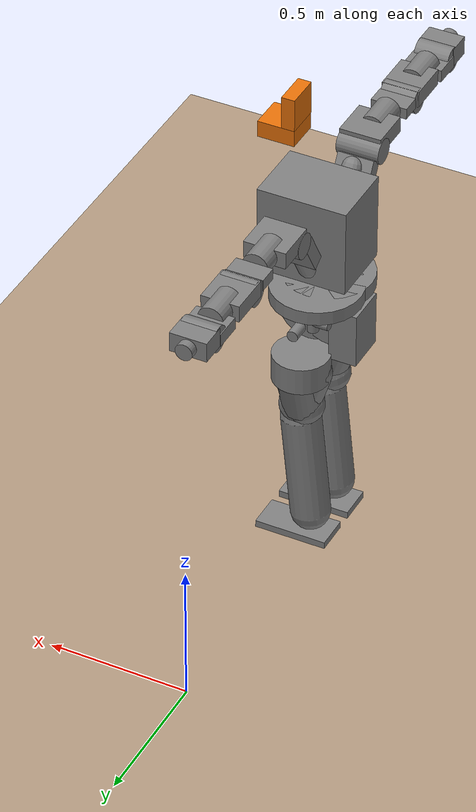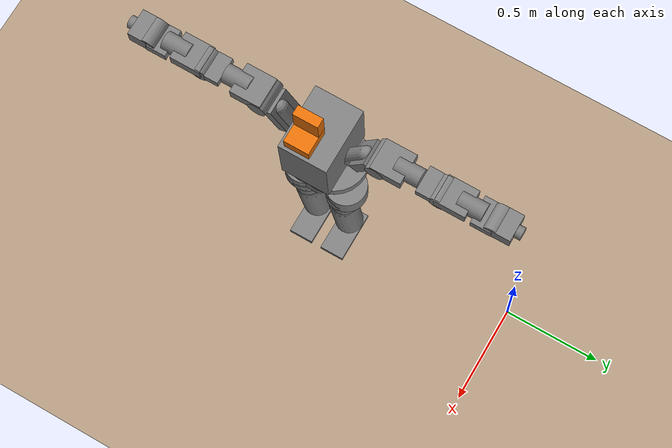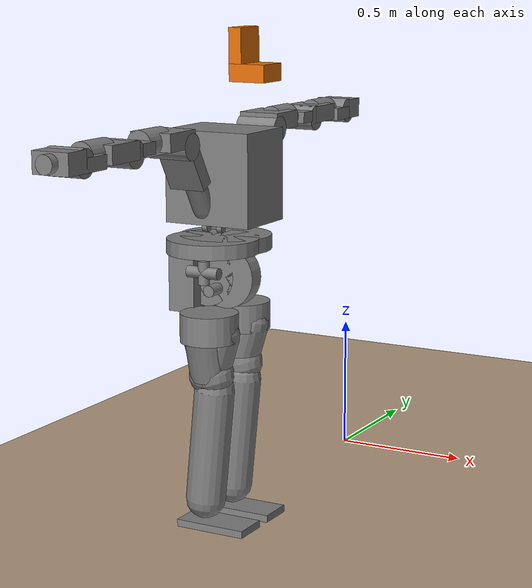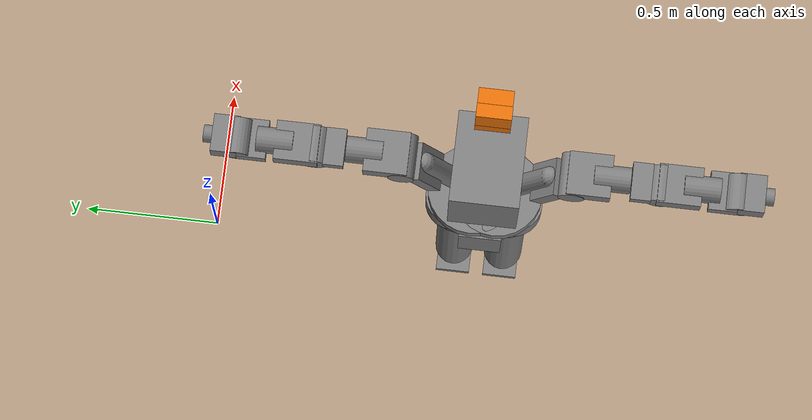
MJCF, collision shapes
<mujoco model="Atlas (v1.31)">
	<compiler coordinate="local" angle="radian" meshdir="../meshes/atlas/"/>
	<size njmax ="1000"/>
	<default>
		<default class="viz">
            <geom contype="0" conaffinity="0" group="1" type="mesh"/>
        </default>
		<default class="cls">
            <geom group="2"/>
        </default>
		<site type="sphere" size="0.005" group="3"/>
		<joint limited="true" damping="3"/>
		<default class="FTsensor">
            <site type="cylinder" size="0.005 0.005" group="4" rgba=".1 .1 .9 1"/>
        </default>
	</default>

	<asset>
		<mesh name="pelvis"         file="pelvis.stl"/>
		<mesh name="ltorso"         file="ltorso.stl"/>
		<mesh name="mtorso"         file="mtorso.stl"/>
		<mesh name="utorso"         file="utorso.stl"/>
		<mesh name="l_clav"         file="l_clav.stl"/>
		<mesh name="l_scap"         file="l_scap.stl"/>
		<mesh name="l_uarm"         file="l_uarm.stl"/>
		<mesh name="l_larm"         file="l_larm.stl"/>
		<mesh name="l_farm"         file="l_farm.stl"/>
		<mesh name="l_hand"			file="l_hand.stl"/>
		<mesh name="head"           file="head.stl"/>
		<mesh name="head_camera"    file="head_camera.stl"/>
		<mesh name="r_clav"         file="r_clav.stl"/>
		<mesh name="r_scap"         file="r_scap.stl"/>
		<mesh name="r_uarm"         file="r_uarm.stl"/>
		<mesh name="r_larm"         file="r_larm.stl"/>
		<mesh name="r_farm"         file="r_farm.stl"/>
		<mesh name="r_hand"         file="r_hand.stl"/>
		<mesh name="l_uglut"        file="l_uglut.stl"/>
		<mesh name="l_lglut"        file="l_lglut.stl"/>
		<mesh name="l_uleg"         file="l_uleg.stl"/>
		<mesh name="l_lleg"         file="l_lleg.stl"/>
		<mesh name="l_talus"        file="l_talus.stl"/>
		<mesh name="l_foot"         file="l_foot.stl"/>
		<mesh name="r_uglut"        file="r_uglut.stl"/>
		<mesh name="r_lglut"        file="r_lglut.stl"/>
		<mesh name="r_uleg"         file="r_uleg.stl"/>
		<mesh name="r_lleg"         file="r_lleg.stl"/>
		<mesh name="r_talus"        file="r_talus.stl"/>
		<mesh name="r_foot"         file="r_foot.stl"/>

		<texture name="groundplane" type="2d" builtin="checker" rgb1=".25 .26 .25"
			rgb2=".22 .22 .22" width="100" height="100" mark="none" markrgb=".8 .8 .8"/>

        <material name='MatPlane2' reflectance='0.3' />
		<texture type="skybox" builtin="gradient" width="128" height="128" rgb1="0.4 0.6 0.8" rgb2="0 0 0"/>
        <texture name="texgeom" type="cube" builtin="flat" mark="cross" width="128" height="128" rgb1="0.6 0.6 0.6" rgb2="0.6 0.6 0.6" markrgb="1 1 1"/>
        <texture name="texplane" type="2d" builtin="checker" rgb1=".4 .4 .4" rgb2=".6 .6 .6" width="512" height="512"/>
        <material name='geom' texture="texgeom" texuniform="true"/>
    <material name="MatPlane3" reflectance="0.5" shininess="1" specular="1" texrepeat="60 60" texture="texplane"/>
	</asset>
	<option timestep='0.0005' iterations="50" tolerance="1e-10" solver="Newton" jacobian="dense" cone="elliptic" gravity="0 0 -9.81"/>
	<visual>
        <map fogstart="2" fogend="4"/>
    </visual>

	<worldbody>
        <light directional="true" diffuse=".8 .8 .8" pos="0 0 10" dir="0 0 -10"/>
        <light directional="true" diffuse=".5 .5 .5" pos="10 0 0" dir="-10 0 0"/>
		<!-- GROUND -->
		<geom name="ground" type="plane" pos="0 0 0" size="30 30 .05" rgba="0.7 0.6 0.5 1" material="MatPlane3" group="3"/>

		<body name="pelvis" pos="0 -1 0.9">
			<site name="butt" pos="-.15 0 -.15"/>
			<joint type="free" limited="false" name="root" damping="0" stiffness="0" armature="0"/>
			<inertial pos="0.0111 0 0.0271" quat="0.483552 0.511912 -0.490148 0.513691" mass="12.54638" diaginertia="0.056060 0.056060 0.056060" />
			<geom class="viz" mesh="pelvis" />
			<geom type="cylinder" pos="0.046 0 -0.02" quat="0.707107 0.707107 0 0" size="0.11 0.03" class="cls"/>
			<geom type="cylinder" pos="-0.03 0 -0.02" quat="0.707107 0.707107 0 0" size="0.11 0.03" class="cls"/>
			<geom type="cylinder" pos="0.01 0.042 0.09" size="0.16 0.025" class="cls"/>
			<geom type="cylinder" pos="0.01 -0.042 0.09" size="0.16 0.025" class="cls"/>
			<geom type="box" pos="-0.1 0 -0.05" size="0.05 0.075 0.1" class="cls"/>
			<body name="ltorso" pos="-0.0125 0 0" >
				<inertial pos="-0.011298 -0.000003 0.074684" quat="0.498101 0.498096 -0.501893 0.501896" mass="1.62729" diaginertia="0.109733 0.064662 0.050298" />
				<joint name="back_lbz" type="hinge" pos="0 0 0" axis="0 0 1" range="-0.610865 0.610865" damping="35" stiffness="0"/>
				<geom class="viz" mesh="ltorso" />
				<body name="mtorso" pos="0 0 0.09" >
					<inertial pos="-0.008163 -0.013125 0.030597" quat="0.707045 -0.000116 -0.000202 0.707169" mass="3.8068" diaginertia="0.283991 0.283991 0.283991" />
					<joint name="back_mby" type="hinge" pos="0 0 0" axis="0 1 0" range="-1.2 1.28" damping="35" stiffness="0"/>
					<geom class="viz" mesh="mtorso" />
					<geom type="cylinder" pos="0 0 0" quat="0.707107 0.707107 0 0" size="0.017 0.015" class="cls"/>
					<geom type="cylinder" pos="0.0285 0 0.05" quat="0.707107 0 0.707107 0" size="0.015 0.01" class="cls"/>
					<geom type="cylinder" pos="-0.0285 0 0.05" quat="0.707107 0 0.707107 0" size="0.015 0.01" class="cls"/>
					<body name="utorso" pos="0 0 0.05"   user="-6006">
						<inertial pos="0.02 -0.001 0.211" quat="0.699117 -0.095385 -0.090376 0.702829" mass="15.2272" diaginertia="0.349824 0.349824 0.349824" />
						<joint name="back_ubx" type="hinge" pos="0 0 0" axis="1 0 0" range="-0.790809 0.790809" damping="35" stiffness="0"/>
						<geom class="viz" mesh="utorso" />
						<geom type="box" pos="0.0446 0 0.1869" size="0.1594 0.12 0.1581" class="cls"/>
						<geom type="capsule" pos="0.024 0.16 0.18" quat="0.965926 -0.258820 0 0" size="0.0363 0.111875" class="cls"/>
						<geom type="capsule" pos="0.024 -0.16 0.18" quat="0.965926 0.258820 0 0" size="0.0363 0.111875" class="cls"/>
						<body name="l_clav" pos="0.024 0.221 0.289" >
							<inertial pos="0.014 0.058 0.029" quat="0.137950 0.693520 -0.137950 0.693520" mass="2.369" diaginertia="0.007 0.006414 0.003586" />
							<joint name="l_arm_usy" type="hinge" pos="0 0 0" axis="0 0.500000 0.866025" range="-1.9635 1.9635" user="0 0.5" stiffness="0"/>
							<geom class="viz" pos="-0.000934 0.001692 0.069242" quat="-0.414459 0.573156 -0.415293 0.572056" mesh="l_clav" />
							<geom type="cylinder" pos="0 0.0697 0.0261" quat="0.707107 0 0.707107 0" size="0.045 0.07625" class="cls"/>
							<geom type="box" pos="-0.005 -0.0074 -0.0538" quat="0.866025 0.500001 0 0" size="0.065 0.075 0.025" class="cls"/>
							<body name="l_scap" pos="0 0.075 0.036" >
								<inertial pos="-0.002 0.108 0" quat="0.5 0.5 -0.5 0.5" mass="2.707" diaginertia="0.013 0.01 0.005" />
								<joint name="l_arm_shx" type="hinge" pos="0 0 0" axis="1 0 0" range="-1.39626 1.74533" user="0 -1" stiffness="0"/>
								<geom class="viz" mesh="l_scap" />
								<geom type="cylinder" pos="0.001 0.12651 0.01521" quat="0.707107 0.707107 0 0" size="0.045 0.0625" class="cls"/>
								<geom type="box" pos="0.001 0.05 0.016" size="0.075 0.075 0.03" class="cls"/>
								<body name="l_uarm" pos="0 0.185 0" >
									<inertial pos="0.007 0.114 0.008" quat="0.5 0.5 0.5 0.5" mass="1.881" diaginertia="0.003 0.003 0.002" />
									<joint name="l_arm_ely" type="hinge" pos="0 0 0" axis="0 1 0" range="0 3.14159" user="0 1.5" stiffness="0"/>
									<geom class="viz" mesh="l_uarm" />
									<geom type="cylinder" pos="0.001 0.111 0" quat="0.707105 0 0.707108 0" size="0.045 0.0625" class="cls"/>
									<geom type="box" pos="0.001 0.043 0.01" quat="0.707107 0 0.707107 0" size="0.02 0.035 0.065" class="cls"/>
									<body name="l_larm" pos="0 0.121 0.013" >
										<inertial pos="-0.003 0.099 -0.014" quat="0.5 0.5 -0.5 0.5" mass="2.148" diaginertia="0.006 0.005 0.003" />
										<joint name="l_arm_elx" type="hinge" pos="0 0 0" axis="1 0 0" range="0 2.35619" user="0 1" stiffness="0"/>
										<geom class="viz" mesh="l_larm" />
										<geom type="cylinder" pos="0.001 0.127 0" quat="0.707107 0.707107 0 0" size="0.045 0.0625" class="cls"/>
										<geom type="box" pos="0.001 0.051 0" size="0.0675 0.075 0.03" class="cls"/>
										<body name="l_farm" pos="0 0.188 -0.013" >
											<inertial pos="0 0.041 0" quat="0.707107 0.707107 0 0" mass="0.981" diaginertia="0.003 0.003 0.001" />
											<joint name="l_arm_uwy" type="hinge" pos="0 0 0" axis="0 1 0" range="-1.571 1.571" stiffness="0"/>
											<geom class="viz" pos="0.000654 -0.018685 -0.001301" quat="0.707069 0.707067 0.007393 0.007393" mesh="l_farm" />
											<geom type="cylinder" pos="0 0.065 0.004" quat="0.707105 0 0.707108 0" size="0.045 0.0625" class="cls"/>
											<geom type="box" pos="0.001 0.015 -0.002" size="0.0675 0.05 0.0225" class="cls"/>
											<body name="l_hand" pos="0 0.058 0" >
												<inertial pos="0 0.093 0" quat="0.707107 0.707107 0 0" mass="2.263" diaginertia="0.01 0.01 0.002" />
												<joint name="l_arm_mwx" type="hinge" pos="0 0 0" axis="1 0 0" range="-0.436 1.571" user="9001" stiffness="0"/>
												<geom class="viz" mesh="l_hand" />
												<geom type="cylinder" pos="0.001 0.1 0.01" quat="0.707107 0.707107 0 0" size="0.03 0.025" class="cls"/>
												<geom type="box" pos="0.001 0.05 0.01" size="0.065 0.045 0.035" class="cls"/>

												<!-- ========== INCLUDE A HAND HERE ========== -->
											</body>
										</body>
									</body>
								</body>
							</body>
						</body>
						<body name="head" pos="0.21672 0 0.53796"  user="-6001">
							<inertial pos="-0.075493 0.000033 0.02774" quat="0.981276 -0.000974 0.192607 -0.000133" mass="1.41984" diaginertia="0.002489 0.002489 0.002489" />
							<joint name="neck_ay" type="hinge" pos="0 0 0" axis="0 1 0" range="-0.610865 1.134464" damping="2" stiffness="5"/>
							<geom class="viz" rgba="0.9098 0.44314 0.031373 1" mesh="head" />
							<geom type="box" pos="-0.0503 0 -0.00195" size="0.06555 0.06 0.02955" rgba="0.9098 0.44314 0.031373 1" class="cls"/>
							<geom type="box" pos="-0.093 0 0.0868" size="0.0234 0.06 0.0592" rgba="0.9098 0.44314 0.031373 1" class="cls"/>
							<body name="left_camera_frame" pos="0 0.035 -0.002" >
								<inertial pos="-0.075493 0.035033 0.02574" mass="0.001" diaginertia="0.000001 0.000001 0.000001" />
								<site name="head_camera_site" pos="0 0 0" quat="0.5 0.5 -0.5 -0.5" user="100"/>
								<body name="left_camera_optical_frame" pos="0 0 0" quat="0.499998 -0.5 0.500002 -0.5" >
									<inertial pos="0 0 0" mass="0.001" diaginertia="0.000001 0.000001 0.000001" />
								</body>
							</body>
							<body name="right_camera_frame" pos="0 -0.035 -0.002" >
								<inertial pos="-0.075493 -0.034967 0.02574" mass="0.001" diaginertia="0.000001 0.000001 0.000001" />
								<body name="right_camera_optical_frame" pos="0 0 0" quat="0.499998 -0.5 0.500002 -0.5" >
									<inertial pos="0 0 0" mass="0.001" diaginertia="0.000001 0.000001 0.000001" />
								</body>
							</body>
							<body name="center_top_led_frame" pos="0.01125 0 0.0105" >
								<inertial pos="-0.064243 0.000033 0.03824" mass="0.001" diaginertia="0.000001 0.000001 0.000001" />
							</body>
							<body name="center_bottom_led_frame" pos="0.01125 0 -0.0155" >
								<inertial pos="-0.064243 0.000033 0.01224" mass="0.001" diaginertia="0.000001 0.000001 0.000001" />
							</body>
							<body name="left_led_frame" pos="-0.01443 0.07452 0.050346" quat="0.962379 0.019625 -0.072314 0.261173" >
								<inertial pos="-0.089923 0.074553 0.078086" quat="0.962379 0.019625 -0.072314 0.261173" mass="0.001" diaginertia="0.000001 0.000001 0.000001" />
							</body>
							<body name="right_led_frame" pos="-0.01443 -0.07452 0.050346" quat="0.962379 -0.019625 -0.072314 -0.261173" >
								<inertial pos="-0.089923 -0.074487 0.07908" quat="0.962379 -0.019625 -0.072314 -0.261173" mass="0.001" diaginertia="0.000001 0.000001 0.000001" />
							</body>
							<body name="head_imu_link" pos="-0.0475 0.035 0" >
								<inertial pos="-0.122993 0.035033 0.02774" mass="0.001" diaginertia="0.000001 0.000001 0.000001" />
								<geom type="box" pos="0 0 0" size="0.005 0.005 0.005" class="cls"/>
							</body>
						</body>
						<body name="r_clav" pos="0.024 -0.221 0.289" >
							<inertial pos="0.014 -0.058 0.029" quat="-0.137950 0.693520 0.137950 0.693520" mass="2.369" diaginertia="0.007 0.006414 0.003586" />
							<joint name="r_arm_usy" type="hinge" pos="0 0 0" axis="0 0.500000 -0.866025" range="-1.9635 1.9635" user="0 0.5" stiffness="0"/>
							<geom class="viz" pos="-0.000934 -0.001693 0.069243" quat="0.414472 0.573149 0.415305 0.572044" mesh="r_clav" />
							<geom type="cylinder" pos="0 -0.0697 0.0261" quat="0.707107 0 0.707107 0" size="0.045 0.07625" class="cls"/>
							<geom type="box" pos="-0.005 0.0074 -0.0538" quat="0.866025 -0.500001 0 0" size="0.065 0.075 0.025" class="cls"/>
							<body name="r_scap" pos="0 -0.075 0.036" >
								<inertial pos="-0.002 -0.108 0" quat="0.5 0.5 -0.5 0.5" mass="2.707" diaginertia="0.013 0.01 0.005" />
								<joint name="r_arm_shx" type="hinge" pos="0 0 0" axis="1 0 0" range="-1.74533 1.39626" user="0 1" stiffness="0"/>
								<geom class="viz" mesh="r_scap" />
								<geom type="cylinder" pos="0.001 -0.12651 0.01521" quat="0.707107 0.707107 0 0" size="0.045 0.0625" class="cls"/>
								<geom type="box" pos="0.001 -0.05 0.016" size="0.075 0.075 0.03" class="cls"/>
								<body name="r_uarm" pos="0 -0.185 0" >
									<inertial pos="0.007 -0.114 0.008" quat="0.5 0.5 0.5 0.5" mass="1.881" diaginertia="0.003 0.003 0.002" />
									<joint name="r_arm_ely" type="hinge" pos="0 0 0" axis="0 1 0" range="0 3.14159" user="0 1.5" stiffness="0"/>
									<geom class="viz" mesh="r_uarm" />
									<geom type="cylinder" pos="0.001 -0.111 0" quat="0.707105 0 0.707108 0" size="0.045 0.0625" class="cls"/>
									<geom type="box" pos="0.001 -0.043 0.01" quat="0.707107 0 0.707107 0" size="0.02 0.035 0.065" class="cls"/>
									<body name="r_larm" pos="0 -0.121 0.013" >
										<inertial pos="-0.003 -0.099 -0.014" quat="0.5 0.5 -0.5 0.5" mass="2.148" diaginertia="0.006 0.005 0.003" />
										<joint name="r_arm_elx" type="hinge" pos="0 0 0" axis="1 0 0" range="-2.35619 0" user="0 -1" stiffness="0"/>
										<geom class="viz" mesh="r_larm" />
										<geom type="cylinder" pos="0.001 -0.127 0" quat="0.707107 0.707107 0 0" size="0.045 0.0625" class="cls"/>
										<geom type="box" pos="0.001 -0.051 0" size="0.0675 0.075 0.03" class="cls"/>
										<body name="r_farm" pos="0 -0.188 -0.013" >
											<inertial pos="0 -0.041 0" quat="0.707107 0.707107 0 0" mass="0.981" diaginertia="0.003 0.003 0.001" />
											<joint name="r_arm_uwy" type="hinge" pos="0 0 0" axis="0 1 0" range="-1.571 1.571" stiffness="0" />
											<geom class="viz" pos="0.000654 0.018685 -0.001301" quat="0.707067 0.707069 -0.007393 -0.007393" mesh="r_farm" />
											<geom type="cylinder" pos="0 -0.065 0.004" quat="0.707105 0 0.707108 0" size="0.045 0.0625" class="cls"/>
											<geom type="box" pos="0.001 -0.015 -0.002" size="0.0675 0.05 0.0225" class="cls"/>
											<body name="r_hand" pos="0 -0.058 0" >
												<inertial pos="0 -0.093 0" quat="0.707107 0.707107 0 0" mass="2.263" diaginertia="0.01 0.01 0.002" />
												<joint name="r_arm_mwx" type="hinge" pos="0 0 0" axis="1 0 0" range="-1.571 0.436" user="9001" stiffness="0"/>
												<geom class="viz" mesh="r_hand" />
												<geom type="cylinder" pos="0.001 -0.1 0.01" quat="0.707107 0.707107 0 0" size="0.03 0.025" class="cls"/>
												<geom type="box" pos="0.001 -0.05 0.01" size="0.065 0.045 0.035" class="cls"/>

												<!-- ========== INCLUDE A HAND HERE ========== -->
											</body>
										</body>
									</body>
								</body>
							</body>
						</body>
					</body>
				</body>
			</body>
			<body name="l_uglut" pos="0 0.089 0" >
				<inertial pos="0.005293 -0.003447 0.003130" quat="1.000000 -0.000002 0.000547 -0.000001" mass="1.51622" diaginertia="0.019094 0.019094 0.019094" />
				<joint name="l_leg_uhz" type="hinge" pos="0 0 0" axis="0 0 1" range="-0.32 1.14" />
				<geom class="viz" mesh="l_uglut" />
				<geom type="cylinder" pos="0 0 0" quat="0.707107 0 0.707107 0" size="0.019096 0.039198" class="cls"/>
				<geom type="cylinder" pos="0 0 0" size="0.019841 0.040421" />
				<body name="l_lglut" pos="0 0 0" >
					<inertial pos="0.013334 0.017048 -0.031205" quat="0.999977 0.006717 -0.000034 -0.000401" mass="0.803" diaginertia="0.023308 0.023308 0.023308" />
					<joint name="l_leg_mhx" type="hinge" pos="0 0 0" axis="1 0 0" range="-0.47 0.495" />
					<geom class="viz" mesh="l_lglut" />
					<geom type="cylinder" pos="0.049968 0.022488 -0.050117" quat="0.707107 0.707107 0 0" size="0.020097 0.030153" class="cls"/>
					<geom type="cylinder" pos="0 0 0" quat="0.707107 0 0.707107 0" size="0.02 0.06" class="cls"/>
					<body name="l_uleg" pos="0.05 0 -0.05" >
						<inertial pos="0 0 -0.21" quat="0.707107 0 0 0.707107" mass="7.227" diaginertia="0.047502 0.047502 0.047502" />
						<joint name="l_leg_lhy" type="hinge" pos="0 0 0" axis="0 1 0" range="-1.75 0.524"/>
						<geom class="viz" mesh="l_uleg" />
						<geom type="cylinder" pos="-0.0179 0.02085 -0.13" size="0.1 0.05" class="cls"/>
						<geom type="capsule" pos="-0.03 0.01 -0.23" quat="0.988771 0 -0.149438 0" size="0.07 0.075" class="cls"/>
						<geom type="capsule" pos="-0.005 0.01 -0.23" quat="0.988771 0 0.149438 0" size="0.07 0.075" class="cls"/>
						<geom type="cylinder" pos="-0.02 0.03 -0.23" quat="0.992198 -0.124675 0 0" size="0.07 0.075" class="cls"/>
						<body name="l_lleg" pos="-0.05 0 -0.374" >
							<inertial pos="0.001 0 -0.187" quat="0.999751 0 0.022327 0" mass="4.367" diaginertia="0.077134 0.076 0.009866" />
							<joint name="l_leg_kny" type="hinge" pos="0 0 0" axis="0 1 0" range="0 2.45"/>
							<geom class="viz" mesh="l_lleg" />
							<geom type="capsule" pos="0.02 0.00295 -0.18" quat="0.998750 0 0.049979 0" size="0.07 0.2" class="cls"/>
							<site name="lkneecap" pos="0 0 0.1" />
							<body name="l_talus" pos="0 0 -0.422" >
								<inertial pos="0 0 0" quat="0 0.707107 0 0.707107" mass="0.867" diaginertia="0.004007 0.003504 0.001" />
								<joint name="l_leg_uay" type="hinge" pos="0 0 0" axis="0 1 0" range="-0.698 0.698" />
								<geom class="viz" mesh="l_talus" />
								<geom type="cylinder" pos="0 0 0" quat="0.707107 0 0.707107 0" size="0.010181 0.014771" class="cls"/>
								<geom type="cylinder" pos="0 0 0" quat="0.707107 0.707107 0 0" size="0.010348 0.005030" class="cls"/>
								<body name="l_foot" pos="0 0 0"  user ="-6007">
									<inertial pos="0.027 0 -0.067" quat="0 0.707107 0 0.707107" mass="0.867" diaginertia="0.004007 0.003504 0.002" />
									<joint name="l_leg_lax" type="hinge" pos="0 0 0" axis="1 0 0" range="-0.436 0.436" />
									<geom class="viz" mesh="l_foot" />
									<geom type="box" pos="0.048 0 -0.056119" size="0.13 0.062443 0.025" class="cls"/>
									<site name="r_foot_target" pos="0.4 -0.08 -0.05"/>
									<site name="l_foot_toes" pos="0.18 0 -0.09"/>
									<site class="FTsensor" name="LF_FT" pos="0 0 -0.09"/>
								</body>
							</body>
						</body>
					</body>
				</body>
			</body>
			<body name="r_uglut" pos="0 -0.089 0" >
				<inertial pos="0.005293 0.003447 0.003130" quat="1.000000 0.000002 0.000547 0.000001" mass="1.51622" diaginertia="0.019094 0.019094 0.019094" />
				<joint name="r_leg_uhz" type="hinge" pos="0 0 0" axis="0 0 1" range="-1.14 0.32" />
				<geom class="viz" mesh="r_uglut" />
				<geom type="cylinder" pos="0 0 0" quat="0.707107 0 0.707107 0" size="0.019096 0.039198" class="cls"/>
				<geom type="cylinder" pos="0 0 0" size="0.019841 0.040421" class="cls"/>
				<body name="r_lglut" pos="0 0 0" >
					<inertial pos="0.013334 -0.017048 -0.031205" quat="0.999977 -0.006717 -0.000034 0.000401" mass="0.803" diaginertia="0.023308 0.023308 0.023308" />
					<joint name="r_leg_mhx" type="hinge" pos="0 0 0" axis="1 0 0" range="-0.495 0.47" />
					<geom class="viz" mesh="r_lglut" />
					<geom type="cylinder" pos="0.049968 -0.022488 -0.050117" quat="0.707107 0.707107 0 0" size="0.020097 0.030153" class="cls"/>
					<geom type="cylinder" pos="0 0 0" quat="0.707107 0 0.707107 0" size="0.02 0.06" class="cls"/>
					<body name="r_uleg" pos="0.05 0 -0.05" >
						<inertial pos="0 0 -0.21" quat="0.707107 0 0 0.707107" mass="7.227" diaginertia="0.047502 0.047502 0.047502" />
						<joint name="r_leg_lhy" type="hinge" pos="0 0 0" axis="0 1 0" range="-1.745 0.524"/>
						<geom class="viz" mesh="r_uleg" />
						<geom type="cylinder" pos="-0.0179 -0.02085 -0.13" size="0.1 0.05" class="cls"/>
						<geom type="capsule" pos="-0.03 -0.01 -0.23" quat="0.988771 0 -0.149438 0" size="0.07 0.075" class="cls"/>
						<geom type="capsule" pos="-0.005 -0.01 -0.23" quat="0.988771 0 0.149438 0" size="0.07 0.075" class="cls"/>
						<geom type="cylinder" pos="-0.02 -0.03 -0.23" quat="0.992198 0.124675 0 0" size="0.07 0.075" class="cls"/>
						<body name="r_lleg" pos="-0.05 0 -0.374" >
							<inertial pos="0.001 0 -0.187" quat="0.999751 0 0.022327 0" mass="4.367" diaginertia="0.077134 0.076 0.009866" />
							<joint name="r_leg_kny" type="hinge" pos="0 0 0" axis="0 1 0" range="0 2.45"/>
							<geom class="viz" mesh="r_lleg" />
							<geom type="capsule" pos="0.02 -0.00295 -0.18" quat="0.998750 0 0.049979 0" size="0.07 0.2" class="cls"/>
							<site name="rkneecap" pos="0 0 0.1" />
							<body name="r_talus" pos="0 0 -0.422" >
								<inertial pos="0 0 0" quat="0 0.707107 0 0.707107" mass="0.867" diaginertia="0.004007 0.003504 0.001" />
								<joint name="r_leg_uay" type="hinge" pos="0 0 0" axis="0 1 0" range="-0.698 0.698" />
								<geom class="viz" mesh="r_talus" />
								<geom type="cylinder" pos="0 0 0" quat="0.707107 0 0.707107 0" size="0.010181 0.014771" class="cls"/>
								<geom type="cylinder" pos="0 0 0" quat="0.707107 0.707107 0 0" size="0.010348 0.005030" class="cls"/>
								<body name="r_foot" pos="0 0 0"  user ="-6008">
									<inertial pos="0.027 0 -0.067" quat="0 0.707107 0 0.707107" mass="0.867" diaginertia="0.004007 0.003504 0.002" />
									<joint name="r_leg_lax" type="hinge" pos="0 0 0" axis="1 0 0" range="-0.436 0.436" />
									<geom class="viz" mesh="r_foot" />
									<geom type="box" pos="0.048 0 -0.056119" size="0.13 0.062443 0.025" class="cls"/>
									<site name="r_foot_toes" pos="0.18 0 -0.09"/>
									<site name="l_foot_target" pos="0.4 0.08 -0.05"/>
									<site class="FTsensor" name="RF_FT" pos="0 0 -0.09"/>
								</body>
							</body>
						</body>
					</body>
				</body>
			</body>
			<body name="imu_link" pos="0.059915 0 -0.01415" >
				<inertial pos="0 0 0" mass="0.1" diaginertia="0.001 0.001 0.001" />
			</body>
		</body>

	</worldbody>

	<actuator>
		<motor name="back_lbz_actuator" joint="back_lbz" ctrlrange="-124 124"/>
		<motor name="back_mby_actuator" joint="back_mby" ctrlrange="-206 206"/>
		<motor name="back_ubx_actuator" joint="back_ubx" ctrlrange="-95 95"/>
		<motor name="l_arm_usy_actuator" joint="l_arm_usy" ctrlrange="-212 212"/>
		<motor name="l_arm_shx_actuator" joint="l_arm_shx" ctrlrange="-170 170"/>
		<motor name="l_arm_ely_actuator" joint="l_arm_ely" ctrlrange="-114 114"/>
		<motor name="l_arm_elx_actuator" joint="l_arm_elx" ctrlrange="-114 114"/>
		<motor name="l_arm_uwy_actuator" joint="l_arm_uwy" ctrlrange="-114 114"/>
		<motor name="l_arm_mwx_actuator" joint="l_arm_mwx" ctrlrange="-60 60"/>
		<motor name="neck_ay_actuator" 	 joint="neck_ay" 	ctrlrange="-5 5"/>
		<motor name="r_arm_usy_actuator" joint="r_arm_usy" ctrlrange="-212 212"/>
		<motor name="r_arm_shx_actuator" joint="r_arm_shx" ctrlrange="-170 170"/>
		<motor name="r_arm_ely_actuator" joint="r_arm_ely" ctrlrange="-114 114"/>
		<motor name="r_arm_elx_actuator" joint="r_arm_elx" ctrlrange="-114 114"/>
		<motor name="r_arm_uwy_actuator" joint="r_arm_uwy" ctrlrange="-114 114"/>
		<motor name="r_arm_mwx_actuator" joint="r_arm_mwx" ctrlrange="-60 60"/>
		<motor name="l_leg_uhz_actuator" joint="l_leg_uhz" ctrlrange="-110 110"/>
		<motor name="l_leg_mhx_actuator" joint="l_leg_mhx" ctrlrange="-180 180"/>
		<motor name="l_leg_lhy_actuator" joint="l_leg_lhy" ctrlrange="-260 260"/>
		<motor name="l_leg_kny_actuator" joint="l_leg_kny" ctrlrange="-400 400"/>
		<motor name="l_leg_uay_actuator" joint="l_leg_uay" ctrlrange="-220 220"/>
		<motor name="l_leg_lax_actuator" joint="l_leg_lax" ctrlrange="-90 90"/>
		<motor name="r_leg_uhz_actuator" joint="r_leg_uhz" ctrlrange="-110 110"/>
		<motor name="r_leg_mhx_actuator" joint="r_leg_mhx" ctrlrange="-180 180"/>
		<motor name="r_leg_lhy_actuator" joint="r_leg_lhy" ctrlrange="-260 260"/>
		<motor name="r_leg_kny_actuator" joint="r_leg_kny" ctrlrange="-400 400"/>
		<motor name="r_leg_uay_actuator" joint="r_leg_uay" ctrlrange="-220 220"/>
		<motor name="r_leg_lax_actuator" joint="r_leg_lax" ctrlrange="-90 90"/>
	</actuator>

	<sensor>
        <force name="LF_Force_sensor" site="LF_FT"/>
        <force name="RF_Force_sensor" site="RF_FT"/>
    </sensor>
</mujoco>
